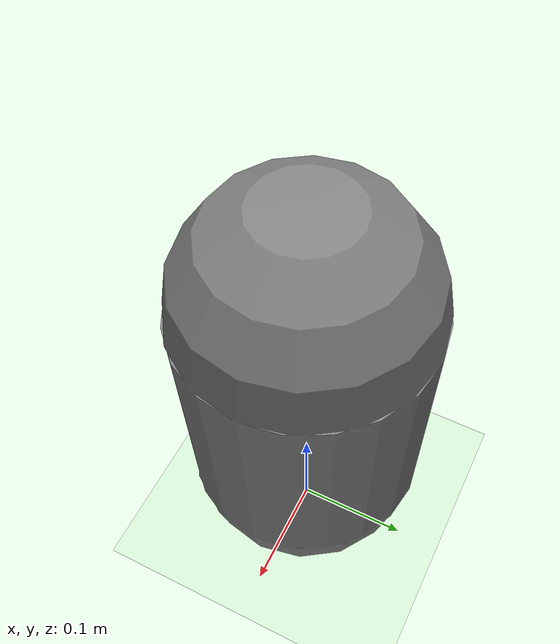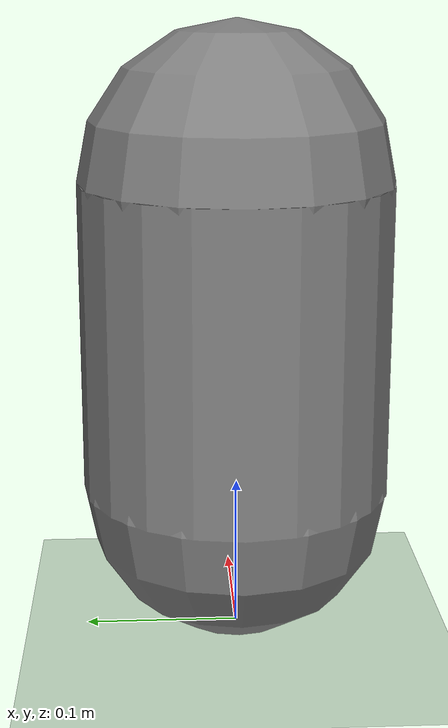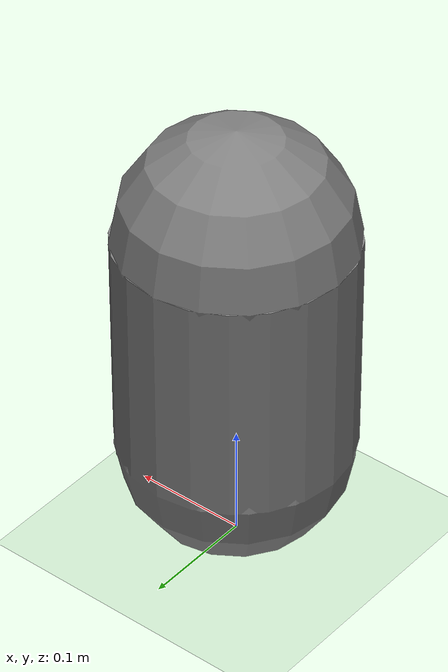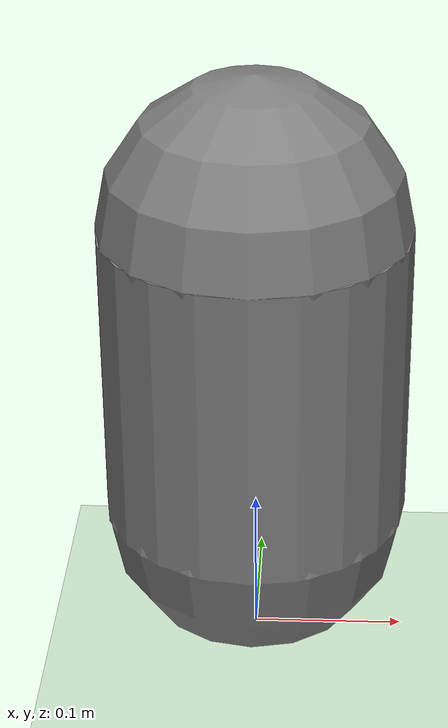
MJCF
<mujoco model="2 dof ball">
    <compiler angle="radian"/>
    <option timestep="0.002" iterations="1" ls_iterations="4" solver="Newton" gravity="0 0 -9.81">
        <flag eulerdamp="disable"/>
    </option>
    <worldbody>
        <light cutoff="100" diffuse="1 1 1" dir="-0 0 -1.3" directional="true" exponent="1" pos="0 0 1.3" specular=".1 .1 .1"/>
        <geom conaffinity="1" condim="3" name="floor" pos="0 0 0" rgba="0.8 0.9 0.8 1" size="20 20 .125" type="plane" material="MatPlane" group="1"/>
        <body name="ball" pos="0 0 0.2">
            <camera name="fwd" pos="0 0.11 0" xyaxes="1 0 0 0 0 1"/>
            <joint axis="1 0 0" pos="0 0 -0.1" limited="false" name="rootx" type="slide"/>
            <joint axis="0 1 0" pos="0 0 -0.1" limited="false" name="rooty" type="slide"/>
            <joint axis="0 0 1" pos="0 0 -0.1" limited="false" name="rotz" type="hinge"/>
            <geom name="ball_geom" size="0.1 0.1" type="capsule" conaffinity="0" contype="1"/>
        </body>
    </worldbody>

    <actuator>
        <motor ctrllimited="true" ctrlrange="-1.0 1.0" gear="50.0" joint="rootx"/>
        <motor ctrllimited="true" ctrlrange="-1.0 1.0" gear="50.0" joint="rooty"/>
        <motor ctrllimited="true" ctrlrange="-1.0 1.0" gear="50.0" joint="rotz"/>
    </actuator>

    <asset>
        <texture type="skybox" builtin="gradient" rgb1="1.0 1.0 1.0" rgb2="1.0 1.0 1.0" width="512" height="512"/>
        <texture name="plane" type="2d" builtin="flat" rgb1="1 1 1" rgb2="1 1 1" width="512" height="512" mark="cross" markrgb="0 0 0"/>
        <material name="MatPlane" reflectance="0.0" texture="plane" texrepeat="3 3" texuniform="true"/>
    </asset>

</mujoco>
